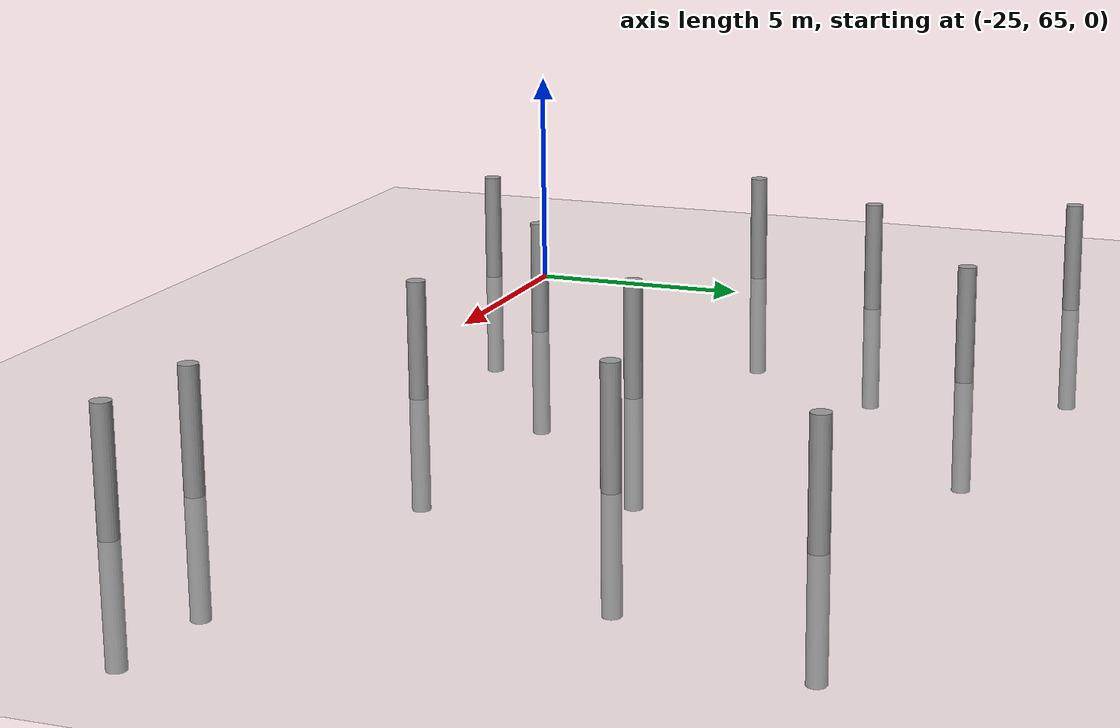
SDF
<sdf version="1.6">
 <world name="default">
  <model name="ground_plane">
   <static>1</static>
   <link name="link">
    <collision name="collision">
     <geometry><plane><normal>0 0 1</normal><size>100 100</size></plane></geometry>
     <surface><friction><ode><mu>100</mu><mu2>50</mu2></ode></friction></surface>
    </collision>
    <visual name="visual">
     <cast_shadows>0</cast_shadows>
     <geometry><plane><normal>0 0 1</normal><size>100 100</size></plane></geometry>
     <material>
      <script><uri>file://media/materials/scripts/gazebo.material</uri><name>Gazebo/Grey</name></script>
     </material>
    </visual>
   </link>
  </model>
  <model name="empty_pillars_0">
   <link name="link">
    <inertial>
     <mass>1</mass>
     <inertia><ixx>0.145833</ixx><ixy>0</ixy><ixz>0</ixz><iyy>0.145833</iyy><iyz>0</iyz><izz>0.125</izz></inertia>
    </inertial>
    <visual name="visual">
     <geometry><cylinder><radius>0.2</radius><length>5</length></cylinder></geometry>
     <material>
      <script><name>Gazebo/Grey</name><uri>file://media/materials/scripts/gazebo.material</uri></script>
      <shader type="vertex"><normal_map>__default__</normal_map></shader>
      <ambient>0.3 0.3 0.3 1</ambient>
      <diffuse>0.7 0.7 0.7 1</diffuse>
      <specular>0.01 0.01 0.01 1</specular>
      <emissive>0 0 0 1</emissive>
     </material>
    </visual>
    <collision name="collision">
     <geometry><cylinder><radius>0.05</radius><length>5</length></cylinder></geometry>
     <surface>
      <friction>
       <ode><mu>1</mu><mu2>1</mu2><fdir1>0 0 0</fdir1><slip1>0</slip1><slip2>0</slip2></ode>
       <torsional>
        <coefficient>1</coefficient>
        <patch_radius>0</patch_radius>
        <surface_radius>0</surface_radius>
        <use_patch_radius>1</use_patch_radius>
        <ode><slip>0</slip></ode>
       </torsional>
      </friction>
      <bounce><restitution_coefficient>0</restitution_coefficient><threshold>1e+06</threshold></bounce>
      <contact>
       <collide_without_contact>0</collide_without_contact>
       <collide_without_contact_bitmask>1</collide_without_contact_bitmask>
       <collide_bitmask>1</collide_bitmask>
       <ode>
        <soft_cfm>0</soft_cfm>
        <soft_erp>0.2</soft_erp>
        <kp>1e+13</kp>
        <kd>1</kd>
        <max_vel>0.01</max_vel>
        <min_depth>0</min_depth>
       </ode>
       <bullet>
        <split_impulse>1</split_impulse>
        <split_impulse_penetration_threshold>-0.01</split_impulse_penetration_threshold>
        <soft_cfm>0</soft_cfm>
        <soft_erp>0.2</soft_erp>
        <kp>1e+13</kp>
        <kd>1</kd>
       </bullet>
      </contact>
     </surface>
    </collision>
   </link>
   <model name="empty_pillar_clone">
    <link name="link">
     <inertial>
      <mass>1</mass>
      <inertia><ixx>0.145833</ixx><ixy>0</ixy><ixz>0</ixz><iyy>0.145833</iyy><iyz>0</iyz><izz>0.125</izz></inertia>
     </inertial>
     <visual name="visual">
      <geometry><cylinder><radius>0.2</radius><length>5</length></cylinder></geometry>
      <material>
       <script><name>Gazebo/Grey</name><uri>file://media/materials/scripts/gazebo.material</uri></script>
       <shader type="vertex"><normal_map>__default__</normal_map></shader>
       <ambient>0.3 0.3 0.3 1</ambient>
       <diffuse>0.7 0.7 0.7 1</diffuse>
       <specular>0.01 0.01 0.01 1</specular>
       <emissive>0 0 0 1</emissive>
      </material>
     </visual>
     <collision name="collision">
      <geometry><cylinder><radius>0.05</radius><length>5</length></cylinder></geometry>
      <surface>
       <friction>
        <ode><mu>1</mu><mu2>1</mu2><fdir1>0 0 0</fdir1><slip1>0</slip1><slip2>0</slip2></ode>
        <torsional>
         <coefficient>1</coefficient>
         <patch_radius>0</patch_radius>
         <surface_radius>0</surface_radius>
         <use_patch_radius>1</use_patch_radius>
         <ode><slip>0</slip></ode>
        </torsional>
       </friction>
       <bounce><restitution_coefficient>0</restitution_coefficient><threshold>1e+06</threshold></bounce>
       <contact>
        <collide_without_contact>0</collide_without_contact>
        <collide_without_contact_bitmask>1</collide_without_contact_bitmask>
        <collide_bitmask>1</collide_bitmask>
        <ode>
         <soft_cfm>0</soft_cfm>
         <soft_erp>0.2</soft_erp>
         <kp>1e+13</kp>
         <kd>1</kd>
         <max_vel>0.01</max_vel>
         <min_depth>0</min_depth>
        </ode>
        <bullet>
         <split_impulse>1</split_impulse>
         <split_impulse_penetration_threshold>-0.01</split_impulse_penetration_threshold>
         <soft_cfm>0</soft_cfm>
         <soft_erp>0.2</soft_erp>
         <kp>1e+13</kp>
         <kd>1</kd>
        </bullet>
       </contact>
      </surface>
     </collision>
    </link>
    <static>0</static>
    <pose>1.47843 -4.49529 0 0 -0 0</pose>
   </model>
   <model name="empty_pillar_clone_0">
    <link name="link">
     <inertial>
      <mass>1</mass>
      <inertia><ixx>0.145833</ixx><ixy>0</ixy><ixz>0</ixz><iyy>0.145833</iyy><iyz>0</iyz><izz>0.125</izz></inertia>
     </inertial>
     <visual name="visual">
      <geometry><cylinder><radius>0.2</radius><length>5</length></cylinder></geometry>
      <material>
       <script><name>Gazebo/Grey</name><uri>file://media/materials/scripts/gazebo.material</uri></script>
       <shader type="vertex"><normal_map>__default__</normal_map></shader>
       <ambient>0.3 0.3 0.3 1</ambient>
       <diffuse>0.7 0.7 0.7 1</diffuse>
       <specular>0.01 0.01 0.01 1</specular>
       <emissive>0 0 0 1</emissive>
      </material>
     </visual>
     <collision name="collision">
      <geometry><cylinder><radius>0.05</radius><length>5</length></cylinder></geometry>
      <surface>
       <friction>
        <ode><mu>1</mu><mu2>1</mu2><fdir1>0 0 0</fdir1><slip1>0</slip1><slip2>0</slip2></ode>
        <torsional>
         <coefficient>1</coefficient>
         <patch_radius>0</patch_radius>
         <surface_radius>0</surface_radius>
         <use_patch_radius>1</use_patch_radius>
         <ode><slip>0</slip></ode>
        </torsional>
       </friction>
       <bounce><restitution_coefficient>0</restitution_coefficient><threshold>1e+06</threshold></bounce>
       <contact>
        <collide_without_contact>0</collide_without_contact>
        <collide_without_contact_bitmask>1</collide_without_contact_bitmask>
        <collide_bitmask>1</collide_bitmask>
        <ode>
         <soft_cfm>0</soft_cfm>
         <soft_erp>0.2</soft_erp>
         <kp>1e+13</kp>
         <kd>1</kd>
         <max_vel>0.01</max_vel>
         <min_depth>0</min_depth>
        </ode>
        <bullet>
         <split_impulse>1</split_impulse>
         <split_impulse_penetration_threshold>-0.01</split_impulse_penetration_threshold>
         <soft_cfm>0</soft_cfm>
         <soft_erp>0.2</soft_erp>
         <kp>1e+13</kp>
         <kd>1</kd>
        </bullet>
       </contact>
      </surface>
     </collision>
    </link>
    <static>0</static>
    <pose>10.3453 -7.35986 0 0 -0 0</pose>
   </model>
   <model name="empty_pillar_clone_2">
    <link name="link">
     <inertial>
      <mass>1</mass>
      <inertia><ixx>0.145833</ixx><ixy>0</ixy><ixz>0</ixz><iyy>0.145833</iyy><iyz>0</iyz><izz>0.125</izz></inertia>
     </inertial>
     <visual name="visual">
      <geometry><cylinder><radius>0.2</radius><length>5</length></cylinder></geometry>
      <material>
       <script><name>Gazebo/Grey</name><uri>file://media/materials/scripts/gazebo.material</uri></script>
       <shader type="vertex"><normal_map>__default__</normal_map></shader>
       <ambient>0.3 0.3 0.3 1</ambient>
       <diffuse>0.7 0.7 0.7 1</diffuse>
       <specular>0.01 0.01 0.01 1</specular>
       <emissive>0 0 0 1</emissive>
      </material>
     </visual>
     <collision name="collision">
      <geometry><cylinder><radius>0.05</radius><length>5</length></cylinder></geometry>
      <surface>
       <friction>
        <ode><mu>1</mu><mu2>1</mu2><fdir1>0 0 0</fdir1><slip1>0</slip1><slip2>0</slip2></ode>
        <torsional>
         <coefficient>1</coefficient>
         <patch_radius>0</patch_radius>
         <surface_radius>0</surface_radius>
         <use_patch_radius>1</use_patch_radius>
         <ode><slip>0</slip></ode>
        </torsional>
       </friction>
       <bounce><restitution_coefficient>0</restitution_coefficient><threshold>1e+06</threshold></bounce>
       <contact>
        <collide_without_contact>0</collide_without_contact>
        <collide_without_contact_bitmask>1</collide_without_contact_bitmask>
        <collide_bitmask>1</collide_bitmask>
        <ode>
         <soft_cfm>0</soft_cfm>
         <soft_erp>0.2</soft_erp>
         <kp>1e+13</kp>
         <kd>1</kd>
         <max_vel>0.01</max_vel>
         <min_depth>0</min_depth>
        </ode>
        <bullet>
         <split_impulse>1</split_impulse>
         <split_impulse_penetration_threshold>-0.01</split_impulse_penetration_threshold>
         <soft_cfm>0</soft_cfm>
         <soft_erp>0.2</soft_erp>
         <kp>1e+13</kp>
         <kd>1</kd>
        </bullet>
       </contact>
      </surface>
     </collision>
    </link>
    <static>0</static>
    <pose>6.92427 -1.06221 0 0 -0 0</pose>
   </model>
   <model name="empty_pillar_clone_3">
    <link name="link">
     <inertial>
      <mass>1</mass>
      <inertia><ixx>0.145833</ixx><ixy>0</ixy><ixz>0</ixz><iyy>0.145833</iyy><iyz>0</iyz><izz>0.125</izz></inertia>
     </inertial>
     <visual name="visual">
      <geometry><cylinder><radius>0.2</radius><length>5</length></cylinder></geometry>
      <material>
       <script><name>Gazebo/Grey</name><uri>file://media/materials/scripts/gazebo.material</uri></script>
       <shader type="vertex"><normal_map>__default__</normal_map></shader>
       <ambient>0.3 0.3 0.3 1</ambient>
       <diffuse>0.7 0.7 0.7 1</diffuse>
       <specular>0.01 0.01 0.01 1</specular>
       <emissive>0 0 0 1</emissive>
      </material>
     </visual>
     <collision name="collision">
      <geometry><cylinder><radius>0.05</radius><length>5</length></cylinder></geometry>
      <surface>
       <friction>
        <ode><mu>1</mu><mu2>1</mu2><fdir1>0 0 0</fdir1><slip1>0</slip1><slip2>0</slip2></ode>
        <torsional>
         <coefficient>1</coefficient>
         <patch_radius>0</patch_radius>
         <surface_radius>0</surface_radius>
         <use_patch_radius>1</use_patch_radius>
         <ode><slip>0</slip></ode>
        </torsional>
       </friction>
       <bounce><restitution_coefficient>0</restitution_coefficient><threshold>1e+06</threshold></bounce>
       <contact>
        <collide_without_contact>0</collide_without_contact>
        <collide_without_contact_bitmask>1</collide_without_contact_bitmask>
        <collide_bitmask>1</collide_bitmask>
        <ode>
         <soft_cfm>0</soft_cfm>
         <soft_erp>0.2</soft_erp>
         <kp>1e+13</kp>
         <kd>1</kd>
         <max_vel>0.01</max_vel>
         <min_depth>0</min_depth>
        </ode>
        <bullet>
         <split_impulse>1</split_impulse>
         <split_impulse_penetration_threshold>-0.01</split_impulse_penetration_threshold>
         <soft_cfm>0</soft_cfm>
         <soft_erp>0.2</soft_erp>
         <kp>1e+13</kp>
         <kd>1</kd>
        </bullet>
       </contact>
      </surface>
     </collision>
    </link>
    <static>0</static>
    <pose>5.99316 -11.2211 0 0 -0 0</pose>
   </model>
   <model name="empty_pillar_clone_33">
    <link name="link">
     <inertial>
      <mass>1</mass>
      <inertia><ixx>0.145833</ixx><ixy>0</ixy><ixz>0</ixz><iyy>0.145833</iyy><iyz>0</iyz><izz>0.125</izz></inertia>
     </inertial>
     <visual name="visual">
      <geometry><cylinder><radius>0.2</radius><length>5</length></cylinder></geometry>
      <material>
       <script><name>Gazebo/Grey</name><uri>file://media/materials/scripts/gazebo.material</uri></script>
       <shader type="vertex"><normal_map>__default__</normal_map></shader>
       <ambient>0.3 0.3 0.3 1</ambient>
       <diffuse>0.7 0.7 0.7 1</diffuse>
       <specular>0.01 0.01 0.01 1</specular>
       <emissive>0 0 0 1</emissive>
      </material>
     </visual>
     <collision name="collision">
      <geometry><cylinder><radius>0.05</radius><length>5</length></cylinder></geometry>
      <surface>
       <friction>
        <ode><mu>1</mu><mu2>1</mu2><fdir1>0 0 0</fdir1><slip1>0</slip1><slip2>0</slip2></ode>
        <torsional>
         <coefficient>1</coefficient>
         <patch_radius>0</patch_radius>
         <surface_radius>0</surface_radius>
         <use_patch_radius>1</use_patch_radius>
         <ode><slip>0</slip></ode>
        </torsional>
       </friction>
       <bounce><restitution_coefficient>0</restitution_coefficient><threshold>1e+06</threshold></bounce>
       <contact>
        <collide_without_contact>0</collide_without_contact>
        <collide_without_contact_bitmask>1</collide_without_contact_bitmask>
        <collide_bitmask>1</collide_bitmask>
        <ode>
         <soft_cfm>0</soft_cfm>
         <soft_erp>0.2</soft_erp>
         <kp>1e+13</kp>
         <kd>1</kd>
         <max_vel>0.01</max_vel>
         <min_depth>0</min_depth>
        </ode>
        <bullet>
         <split_impulse>1</split_impulse>
         <split_impulse_penetration_threshold>-0.01</split_impulse_penetration_threshold>
         <soft_cfm>0</soft_cfm>
         <soft_erp>0.2</soft_erp>
         <kp>1e+13</kp>
         <kd>1</kd>
        </bullet>
       </contact>
      </surface>
     </collision>
    </link>
    <static>0</static>
    <pose>21.5621 -13.0704 0 0 -0 0</pose>
   </model>
   <model name="empty_pillar_clone_4">
    <link name="link">
     <inertial>
      <mass>1</mass>
      <inertia><ixx>0.145833</ixx><ixy>0</ixy><ixz>0</ixz><iyy>0.145833</iyy><iyz>0</iyz><izz>0.125</izz></inertia>
     </inertial>
     <visual name="visual">
      <geometry><cylinder><radius>0.2</radius><length>5</length></cylinder></geometry>
      <material>
       <script><name>Gazebo/Grey</name><uri>file://media/materials/scripts/gazebo.material</uri></script>
       <shader type="vertex"><normal_map>__default__</normal_map></shader>
       <ambient>0.3 0.3 0.3 1</ambient>
       <diffuse>0.7 0.7 0.7 1</diffuse>
       <specular>0.01 0.01 0.01 1</specular>
       <emissive>0 0 0 1</emissive>
      </material>
     </visual>
     <collision name="collision">
      <geometry><cylinder><radius>0.05</radius><length>5</length></cylinder></geometry>
      <surface>
       <friction>
        <ode><mu>1</mu><mu2>1</mu2><fdir1>0 0 0</fdir1><slip1>0</slip1><slip2>0</slip2></ode>
        <torsional>
         <coefficient>1</coefficient>
         <patch_radius>0</patch_radius>
         <surface_radius>0</surface_radius>
         <use_patch_radius>1</use_patch_radius>
         <ode><slip>0</slip></ode>
        </torsional>
       </friction>
       <bounce><restitution_coefficient>0</restitution_coefficient><threshold>1e+06</threshold></bounce>
       <contact>
        <collide_without_contact>0</collide_without_contact>
        <collide_without_contact_bitmask>1</collide_without_contact_bitmask>
        <collide_bitmask>1</collide_bitmask>
        <ode>
         <soft_cfm>0</soft_cfm>
         <soft_erp>0.2</soft_erp>
         <kp>1e+13</kp>
         <kd>1</kd>
         <max_vel>0.01</max_vel>
         <min_depth>0</min_depth>
        </ode>
        <bullet>
         <split_impulse>1</split_impulse>
         <split_impulse_penetration_threshold>-0.01</split_impulse_penetration_threshold>
         <soft_cfm>0</soft_cfm>
         <soft_erp>0.2</soft_erp>
         <kp>1e+13</kp>
         <kd>1</kd>
        </bullet>
       </contact>
      </surface>
     </collision>
    </link>
    <static>0</static>
    <pose>1.48428 -14.2998 0 0 -0 0</pose>
   </model>
   <model name="empty_pillar_clone_47">
    <link name="link">
     <inertial>
      <mass>1</mass>
      <inertia><ixx>0.145833</ixx><ixy>0</ixy><ixz>0</ixz><iyy>0.145833</iyy><iyz>0</iyz><izz>0.125</izz></inertia>
     </inertial>
     <visual name="visual">
      <geometry><cylinder><radius>0.2</radius><length>5</length></cylinder></geometry>
      <material>
       <script><name>Gazebo/Grey</name><uri>file://media/materials/scripts/gazebo.material</uri></script>
       <shader type="vertex"><normal_map>__default__</normal_map></shader>
       <ambient>0.3 0.3 0.3 1</ambient>
       <diffuse>0.7 0.7 0.7 1</diffuse>
       <specular>0.01 0.01 0.01 1</specular>
       <emissive>0 0 0 1</emissive>
      </material>
     </visual>
     <collision name="collision">
      <geometry><cylinder><radius>0.05</radius><length>5</length></cylinder></geometry>
      <surface>
       <friction>
        <ode><mu>1</mu><mu2>1</mu2><fdir1>0 0 0</fdir1><slip1>0</slip1><slip2>0</slip2></ode>
        <torsional>
         <coefficient>1</coefficient>
         <patch_radius>0</patch_radius>
         <surface_radius>0</surface_radius>
         <use_patch_radius>1</use_patch_radius>
         <ode><slip>0</slip></ode>
        </torsional>
       </friction>
       <bounce><restitution_coefficient>0</restitution_coefficient><threshold>1e+06</threshold></bounce>
       <contact>
        <collide_without_contact>0</collide_without_contact>
        <collide_without_contact_bitmask>1</collide_without_contact_bitmask>
        <collide_bitmask>1</collide_bitmask>
        <ode>
         <soft_cfm>0</soft_cfm>
         <soft_erp>0.2</soft_erp>
         <kp>1e+13</kp>
         <kd>1</kd>
         <max_vel>0.01</max_vel>
         <min_depth>0</min_depth>
        </ode>
        <bullet>
         <split_impulse>1</split_impulse>
         <split_impulse_penetration_threshold>-0.01</split_impulse_penetration_threshold>
         <soft_cfm>0</soft_cfm>
         <soft_erp>0.2</soft_erp>
         <kp>1e+13</kp>
         <kd>1</kd>
        </bullet>
       </contact>
      </surface>
     </collision>
    </link>
    <static>0</static>
    <pose>-0.569433 -7.97346 0 0 -0 0</pose>
   </model>
   <model name="empty_pillar_clone_48">
    <link name="link">
     <inertial>
      <mass>1</mass>
      <inertia><ixx>0.145833</ixx><ixy>0</ixy><ixz>0</ixz><iyy>0.145833</iyy><iyz>0</iyz><izz>0.125</izz></inertia>
     </inertial>
     <visual name="visual">
      <geometry><cylinder><radius>0.2</radius><length>5</length></cylinder></geometry>
      <material>
       <script><name>Gazebo/Grey</name><uri>file://media/materials/scripts/gazebo.material</uri></script>
       <shader type="vertex"><normal_map>__default__</normal_map></shader>
       <ambient>0.3 0.3 0.3 1</ambient>
       <diffuse>0.7 0.7 0.7 1</diffuse>
       <specular>0.01 0.01 0.01 1</specular>
       <emissive>0 0 0 1</emissive>
      </material>
     </visual>
     <collision name="collision">
      <geometry><cylinder><radius>0.05</radius><length>5</length></cylinder></geometry>
      <surface>
       <friction>
        <ode><mu>1</mu><mu2>1</mu2><fdir1>0 0 0</fdir1><slip1>0</slip1><slip2>0</slip2></ode>
        <torsional>
         <coefficient>1</coefficient>
         <patch_radius>0</patch_radius>
         <surface_radius>0</surface_radius>
         <use_patch_radius>1</use_patch_radius>
         <ode><slip>0</slip></ode>
        </torsional>
       </friction>
       <bounce><restitution_coefficient>0</restitution_coefficient><threshold>1e+06</threshold></bounce>
       <contact>
        <collide_without_contact>0</collide_without_contact>
        <collide_without_contact_bitmask>1</collide_without_contact_bitmask>
        <collide_bitmask>1</collide_bitmask>
        <ode>
         <soft_cfm>0</soft_cfm>
         <soft_erp>0.2</soft_erp>
         <kp>1e+13</kp>
         <kd>1</kd>
         <max_vel>0.01</max_vel>
         <min_depth>0</min_depth>
        </ode>
        <bullet>
         <split_impulse>1</split_impulse>
         <split_impulse_penetration_threshold>-0.01</split_impulse_penetration_threshold>
         <soft_cfm>0</soft_cfm>
         <soft_erp>0.2</soft_erp>
         <kp>1e+13</kp>
         <kd>1</kd>
        </bullet>
       </contact>
      </surface>
     </collision>
    </link>
    <static>0</static>
    <pose>16.2633 -5.65052 0 0 -0 0</pose>
   </model>
   <model name="empty_pillar_clone_51">
    <link name="link">
     <inertial>
      <mass>1</mass>
      <inertia><ixx>0.145833</ixx><ixy>0</ixy><ixz>0</ixz><iyy>0.145833</iyy><iyz>0</iyz><izz>0.125</izz></inertia>
     </inertial>
     <visual name="visual">
      <geometry><cylinder><radius>0.2</radius><length>5</length></cylinder></geometry>
      <material>
       <script><name>Gazebo/Grey</name><uri>file://media/materials/scripts/gazebo.material</uri></script>
       <shader type="vertex"><normal_map>__default__</normal_map></shader>
       <ambient>0.3 0.3 0.3 1</ambient>
       <diffuse>0.7 0.7 0.7 1</diffuse>
       <specular>0.01 0.01 0.01 1</specular>
       <emissive>0 0 0 1</emissive>
      </material>
     </visual>
     <collision name="collision">
      <geometry><cylinder><radius>0.05</radius><length>5</length></cylinder></geometry>
      <surface>
       <friction>
        <ode><mu>1</mu><mu2>1</mu2><fdir1>0 0 0</fdir1><slip1>0</slip1><slip2>0</slip2></ode>
        <torsional>
         <coefficient>1</coefficient>
         <patch_radius>0</patch_radius>
         <surface_radius>0</surface_radius>
         <use_patch_radius>1</use_patch_radius>
         <ode><slip>0</slip></ode>
        </torsional>
       </friction>
       <bounce><restitution_coefficient>0</restitution_coefficient><threshold>1e+06</threshold></bounce>
       <contact>
        <collide_without_contact>0</collide_without_contact>
        <collide_without_contact_bitmask>1</collide_without_contact_bitmask>
        <collide_bitmask>1</collide_bitmask>
        <ode>
         <soft_cfm>0</soft_cfm>
         <soft_erp>0.2</soft_erp>
         <kp>1e+13</kp>
         <kd>1</kd>
         <max_vel>0.01</max_vel>
         <min_depth>0</min_depth>
        </ode>
        <bullet>
         <split_impulse>1</split_impulse>
         <split_impulse_penetration_threshold>-0.01</split_impulse_penetration_threshold>
         <soft_cfm>0</soft_cfm>
         <soft_erp>0.2</soft_erp>
         <kp>1e+13</kp>
         <kd>1</kd>
        </bullet>
       </contact>
      </surface>
     </collision>
    </link>
    <static>0</static>
    <pose>11.8943 -11.5792 0 0 -0 0</pose>
   </model>
   <model name="empty_pillar_clone_8">
    <link name="link">
     <inertial>
      <mass>1</mass>
      <inertia><ixx>0.145833</ixx><ixy>0</ixy><ixz>0</ixz><iyy>0.145833</iyy><iyz>0</iyz><izz>0.125</izz></inertia>
     </inertial>
     <visual name="visual">
      <geometry><cylinder><radius>0.2</radius><length>5</length></cylinder></geometry>
      <material>
       <script><name>Gazebo/Grey</name><uri>file://media/materials/scripts/gazebo.material</uri></script>
       <shader type="vertex"><normal_map>__default__</normal_map></shader>
       <ambient>0.3 0.3 0.3 1</ambient>
       <diffuse>0.7 0.7 0.7 1</diffuse>
       <specular>0.01 0.01 0.01 1</specular>
       <emissive>0 0 0 1</emissive>
      </material>
     </visual>
     <collision name="collision">
      <geometry><cylinder><radius>0.05</radius><length>5</length></cylinder></geometry>
      <surface>
       <friction>
        <ode><mu>1</mu><mu2>1</mu2><fdir1>0 0 0</fdir1><slip1>0</slip1><slip2>0</slip2></ode>
        <torsional>
         <coefficient>1</coefficient>
         <patch_radius>0</patch_radius>
         <surface_radius>0</surface_radius>
         <use_patch_radius>1</use_patch_radius>
         <ode><slip>0</slip></ode>
        </torsional>
       </friction>
       <bounce><restitution_coefficient>0</restitution_coefficient><threshold>1e+06</threshold></bounce>
       <contact>
        <collide_without_contact>0</collide_without_contact>
        <collide_without_contact_bitmask>1</collide_without_contact_bitmask>
        <collide_bitmask>1</collide_bitmask>
        <ode>
         <soft_cfm>0</soft_cfm>
         <soft_erp>0.2</soft_erp>
         <kp>1e+13</kp>
         <kd>1</kd>
         <max_vel>0.01</max_vel>
         <min_depth>0</min_depth>
        </ode>
        <bullet>
         <split_impulse>1</split_impulse>
         <split_impulse_penetration_threshold>-0.01</split_impulse_penetration_threshold>
         <soft_cfm>0</soft_cfm>
         <soft_erp>0.2</soft_erp>
         <kp>1e+13</kp>
         <kd>1</kd>
        </bullet>
       </contact>
      </surface>
     </collision>
    </link>
    <static>0</static>
    <pose>18.9854 -12.8403 0 0 -0 0</pose>
   </model>
   <model name="empty_pillar_clone_9">
    <link name="link">
     <inertial>
      <mass>1</mass>
      <inertia><ixx>0.145833</ixx><ixy>0</ixy><ixz>0</ixz><iyy>0.145833</iyy><iyz>0</iyz><izz>0.125</izz></inertia>
     </inertial>
     <visual name="visual">
      <geometry><cylinder><radius>0.2</radius><length>5</length></cylinder></geometry>
      <material>
       <script><name>Gazebo/Grey</name><uri>file://media/materials/scripts/gazebo.material</uri></script>
       <shader type="vertex"><normal_map>__default__</normal_map></shader>
       <ambient>0.3 0.3 0.3 1</ambient>
       <diffuse>0.7 0.7 0.7 1</diffuse>
       <specular>0.01 0.01 0.01 1</specular>
       <emissive>0 0 0 1</emissive>
      </material>
     </visual>
     <collision name="collision">
      <geometry><cylinder><radius>0.05</radius><length>5</length></cylinder></geometry>
      <surface>
       <friction>
        <ode><mu>1</mu><mu2>1</mu2><fdir1>0 0 0</fdir1><slip1>0</slip1><slip2>0</slip2></ode>
        <torsional>
         <coefficient>1</coefficient>
         <patch_radius>0</patch_radius>
         <surface_radius>0</surface_radius>
         <use_patch_radius>1</use_patch_radius>
         <ode><slip>0</slip></ode>
        </torsional>
       </friction>
       <bounce><restitution_coefficient>0</restitution_coefficient><threshold>1e+06</threshold></bounce>
       <contact>
        <collide_without_contact>0</collide_without_contact>
        <collide_without_contact_bitmask>1</collide_without_contact_bitmask>
        <collide_bitmask>1</collide_bitmask>
        <ode>
         <soft_cfm>0</soft_cfm>
         <soft_erp>0.2</soft_erp>
         <kp>1e+13</kp>
         <kd>1</kd>
         <max_vel>0.01</max_vel>
         <min_depth>0</min_depth>
        </ode>
        <bullet>
         <split_impulse>1</split_impulse>
         <split_impulse_penetration_threshold>-0.01</split_impulse_penetration_threshold>
         <soft_cfm>0</soft_cfm>
         <soft_erp>0.2</soft_erp>
         <kp>1e+13</kp>
         <kd>1</kd>
        </bullet>
       </contact>
      </surface>
     </collision>
    </link>
    <static>0</static>
    <pose>18.1111 -1.13899 0 0 -0 0</pose>
   </model>
   <static>0</static>
   <pose>-26.2243 78.0173 0 0 -0 0</pose>
  </model>
 </world>
</sdf>
